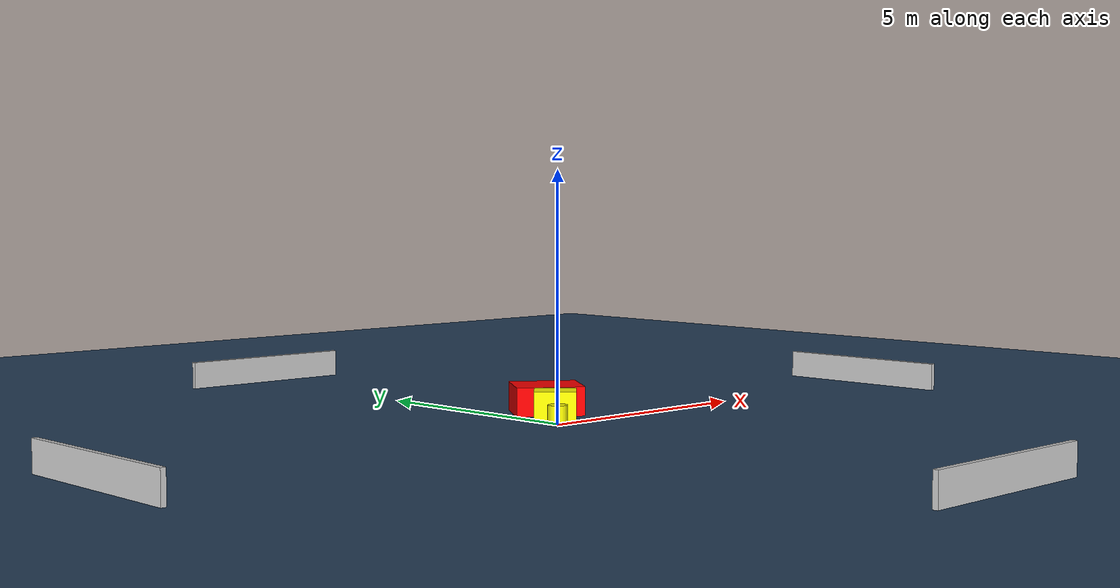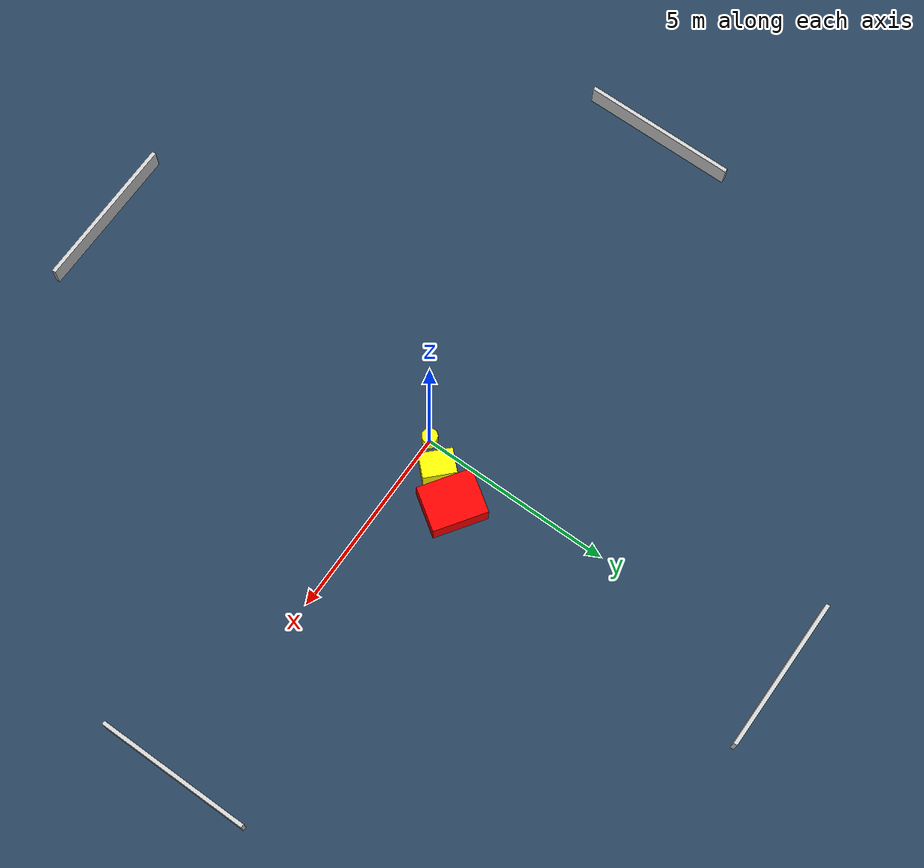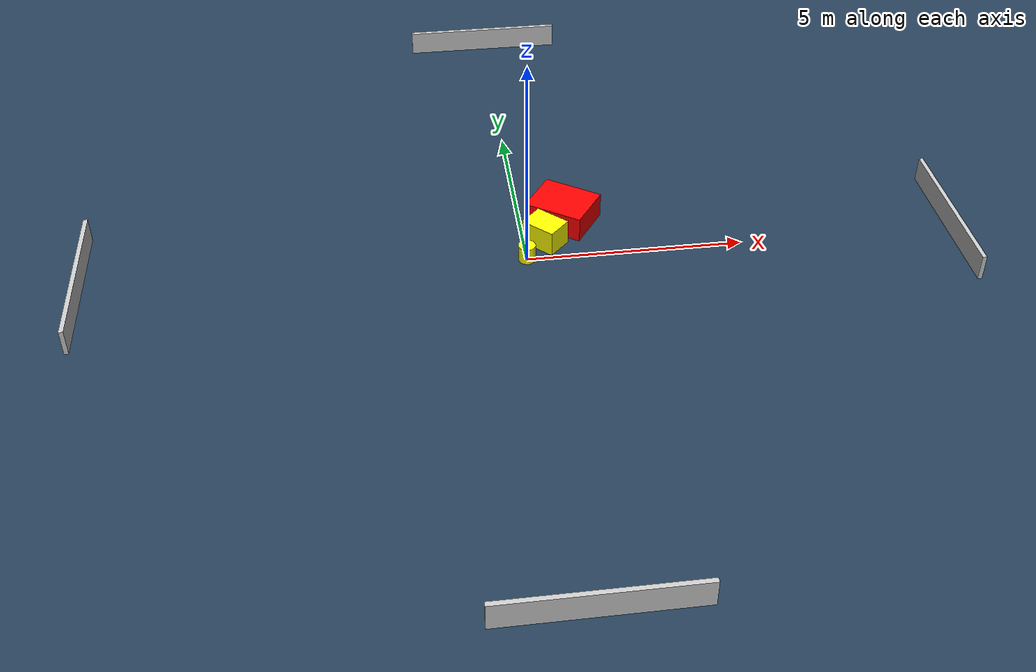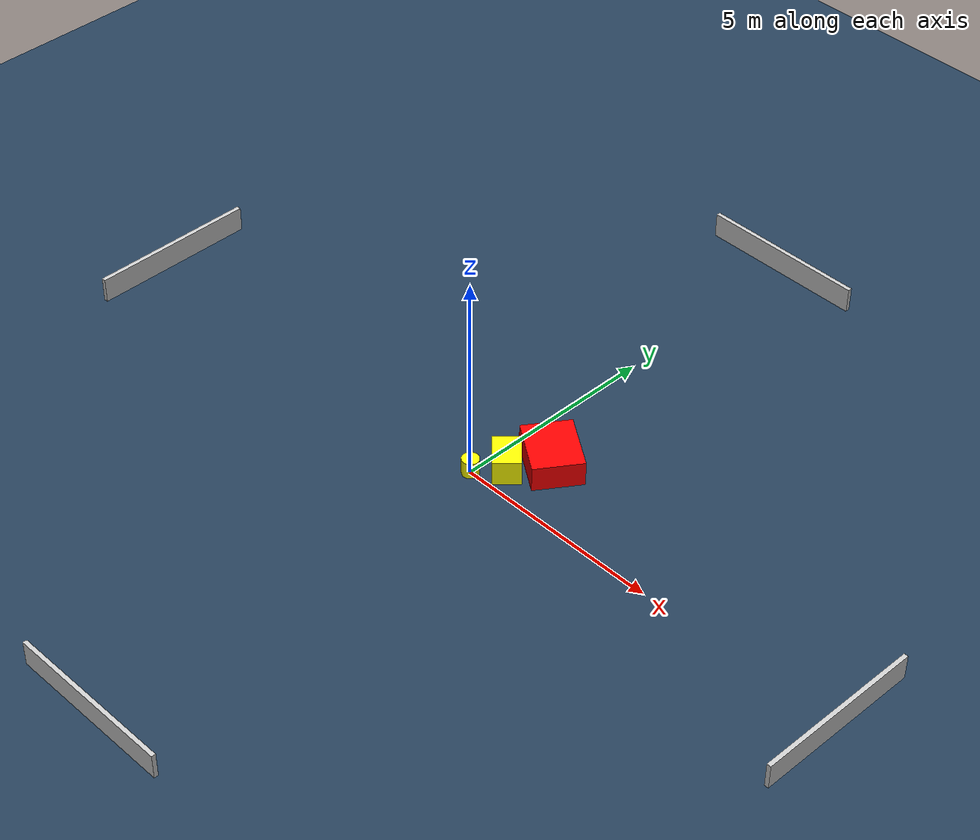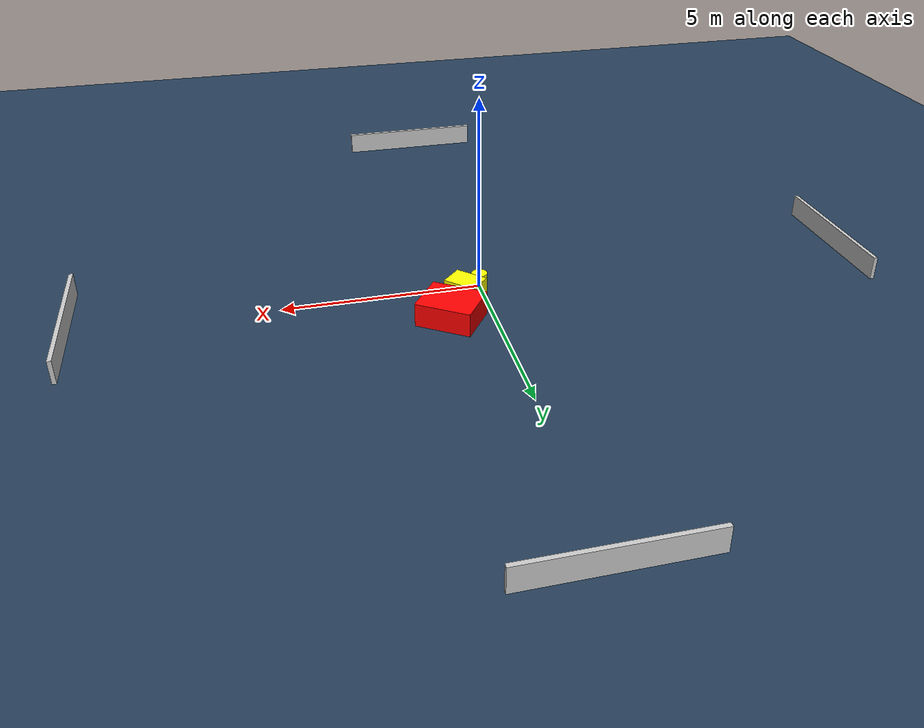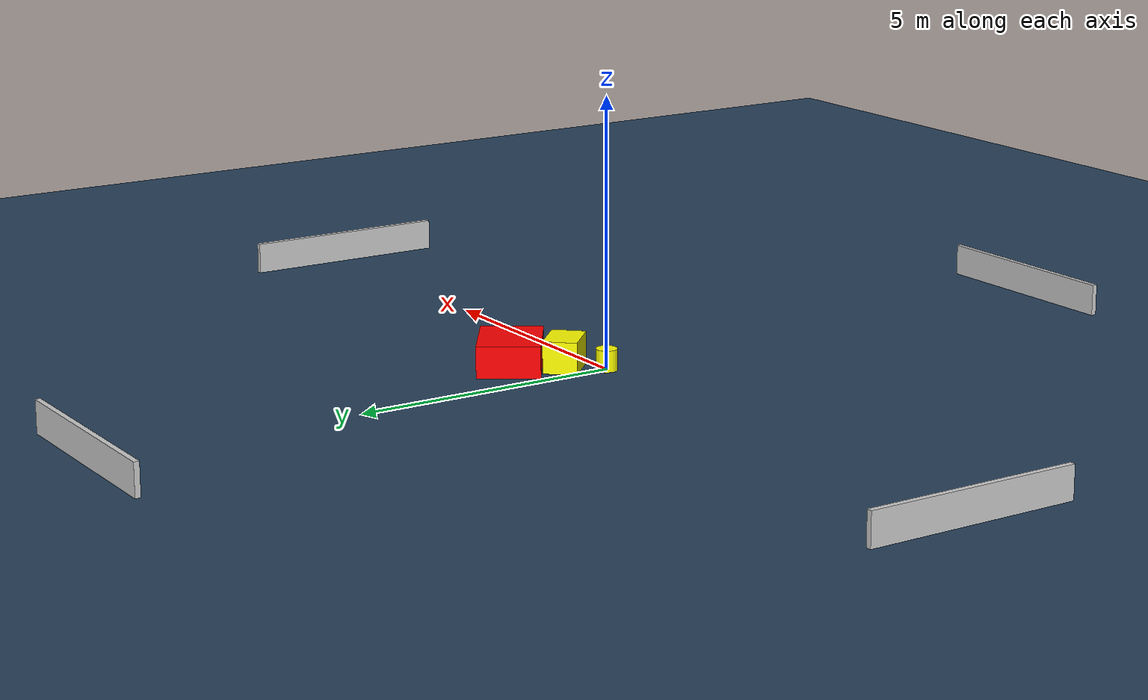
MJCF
<?xml version="1.0" ?>
<mujoco model="generated_environment">
  <option timestep="0.01" integrator="RK4" cone="elliptic"/>
  <default>
    <geom density="1"/>
  </default>
  <asset>
    <texture builtin="gradient" height="3072" name="skybox" rgb1="0.3 0.5 0.7" rgb2="0 0 0" type="skybox" width="512"/>
    <texture builtin="checker" height="300" name="groundplane" rgb1="0.2 0.3 0.4" rgb2="0.1 0.2 0.3" type="2d" width="300"/>
    <material name="groundplane" reflectance="0.2" texrepeat="5 5" texture="groundplane"/>
  </asset>
  <worldbody>
    <light dir="0 0 -1" directional="true" pos="0 0 1.5"/>
    <geom condim="3" friction="0.5 0.005 0.001" material="groundplane" name="floor" pos="0 0 0" size="0 0 0.05" type="plane"/>
    <body name="walls">
      <geom name="wall_1" condim="4" pos="-10.0 0.0 0.3" rgba="0.800000011920929 0.800000011920929 0.800000011920929 1.0" size="0.05 2.0 0.3" type="box"/>
      <geom name="wall_2" condim="4" pos="10.0 0.0 0.3" rgba="0.800000011920929 0.800000011920929 0.800000011920929 1.0" size="0.05 2.0 0.3" type="box"/>
      <geom name="wall_3" condim="4" pos="0.0 -10.0 0.3" rgba="0.800000011920929 0.800000011920929 0.800000011920929 1.0" size="2.0 0.05 0.3" type="box"/>
      <geom name="wall_4" condim="4" pos="0.0 10.0 0.3" rgba="0.800000011920929 0.800000011920929 0.800000011920929 1.0" size="2.0 0.05 0.3" type="box"/>
    </body>
    <body name="robot">
      <joint name="joint_x" type="slide" pos="0 0 0" axis="1 0 0"/>
      <joint name="joint_y" type="slide" pos="0 0 0" axis="0 1 0"/>
      <geom name="robot" type="cylinder" pos="0.0 0.0 0.2" size="0.2 0.2 0.0" mass="5.0" friction="1.0 0.005 0.0001" condim="4" rgba="1.0 1.0 0.0 1.0"/>
    </body>
    <body name="obstacle_1_movable">
      <geom name="obstacle_1_movable" condim="4" pos="0.49581114969574996 0.5863878980819917 0.3" euler="0 0 315.90234157527067" friction="0.0 0.005 0.001" rgba="1.0 1.0 0.0 1.0" size="0.424600879690071 0.3170860489763693 0.3" type="box" mass="0.1"/>
      <joint type="free"/>
    </body>
    <body name="obstacle_2_static">
      <geom name="obstacle_2_static" condim="4" pos="1.0341087396285829 1.4036853725130276 0.3" euler="0 0 325.796738068601" friction="0.0 0.005 0.001" rgba="1.0 0.0 0.0 1.0" size="0.7064431529015658 0.5793201626504092 0.3" type="box"/>
    </body>
  </worldbody>
  <actuator>
    <motor name="actuator_x" joint="joint_x" gear="1" ctrlrange="-1 1"/>
    <motor name="actuator_y" joint="joint_y" gear="1" ctrlrange="-1 1"/>
  </actuator>
</mujoco>
